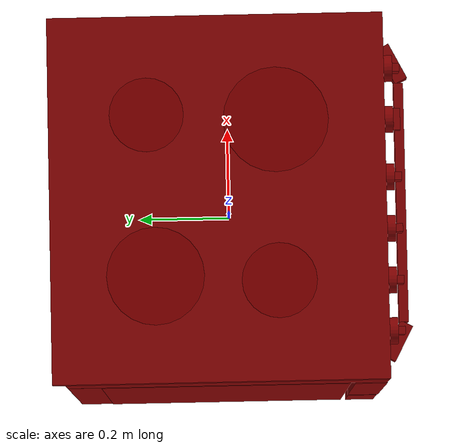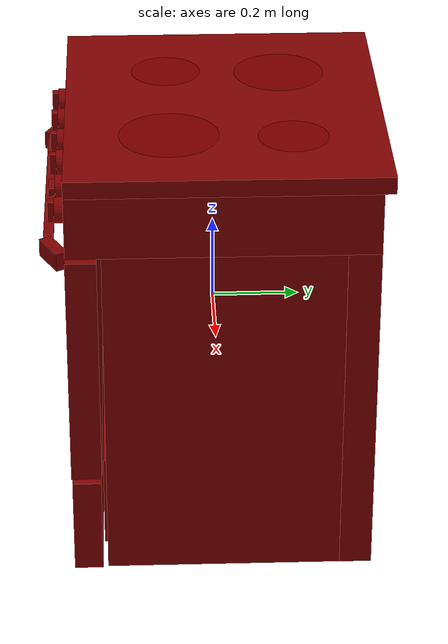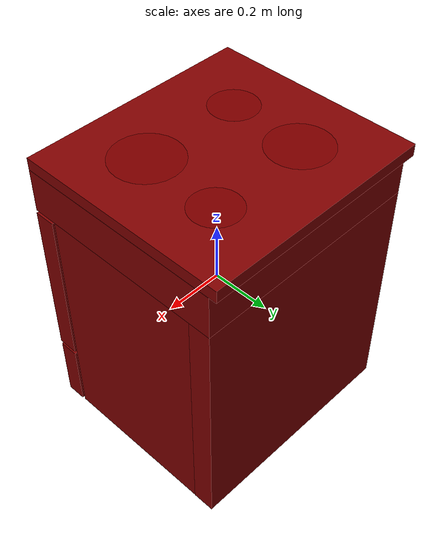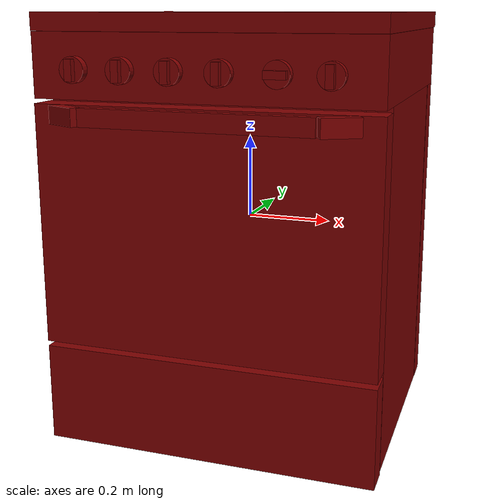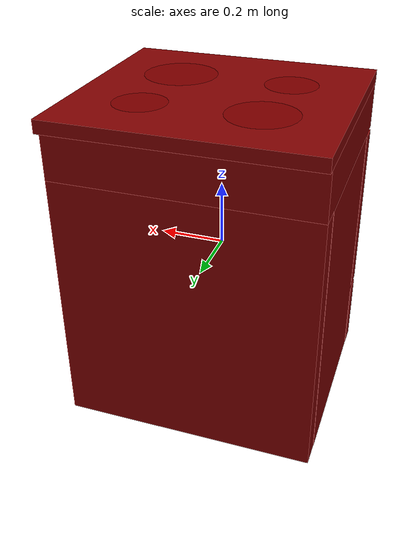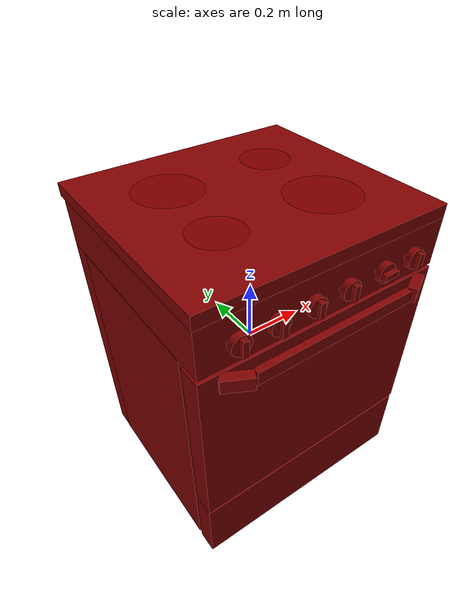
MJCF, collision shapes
<?xml version='1.0' encoding='UTF-8'?>
<mujoco model="model">
  <option timestep="0.002" gravity="0.0 0.0 -9.81"/>
  <compiler angle="radian"/>
  <asset>
    <mesh file="visuals/door.obj" name="door_vis"/>
    <mesh file="visuals/door_Clear.obj" name="door_Clear_vis"/>
    <mesh file="visuals/knob_front_left.obj" name="knob_front_left_vis"/>
    <mesh file="visuals/knob_front_right.obj" name="knob_front_right_vis"/>
    <mesh file="visuals/knob_rear_left.obj" name="knob_rear_left_vis"/>
    <mesh file="visuals/knob_rear_right.obj" name="knob_rear_right_vis"/>
    <mesh file="visuals/knob_temp.obj" name="knob_temp_vis"/>
    <mesh file="visuals/knob_time.obj" name="knob_time_vis"/>
    <mesh file="visuals/rack0.obj" name="rack0_vis"/>
    <mesh file="visuals/Body001.obj" name="Body001_vis"/>
    <mesh file="visuals/Door001.obj" name="Door001_vis"/>
    <mesh file="visuals/Door001_Clear.obj" name="Door001_Clear_vis"/>
    <mesh file="visuals/Knob001.obj" name="Knob001_vis"/>
    <mesh file="visuals/Knob002.obj" name="Knob002_vis"/>
    <mesh file="visuals/Shelf001.obj" name="Shelf001_vis"/>
    <texture file="visuals/T_BC001.png" name="Body001_material" type="2d"/>
    <material name="Body001_material" rgba="1 1 1 1.0" texture="Body001_material" shininess="0.44721364974975586" specular="1"/>
    <texture file="visuals/T_BC001.png" name="door_material" type="2d"/>
    <material name="door_material" rgba="1 1 1 1.0" texture="door_material" shininess="0.44721364974975586" specular="1"/>
    <material name="door_Clear_material" rgba="0.06827369332313538 0.06827369332313538 0.06827369332313538 0.5" shininess="0.44721364974975586" specular="0.3103448502657381"/>
    <texture file="visuals/T_BC001.png" name="knob_front_left_material" type="2d"/>
    <material name="knob_front_left_material" rgba="1 1 1 1.0" texture="knob_front_left_material" shininess="0.44721364974975586" specular="0.3103448502657381"/>
    <texture file="visuals/T_BC001.png" name="knob_front_right_material" type="2d"/>
    <material name="knob_front_right_material" rgba="1 1 1 1.0" texture="knob_front_right_material" shininess="0.44721364974975586" specular="0.3103448502657381"/>
    <texture file="visuals/T_BC001.png" name="knob_rear_left_material" type="2d"/>
    <material name="knob_rear_left_material" rgba="1 1 1 1.0" texture="knob_rear_left_material" shininess="0.44721364974975586" specular="0.3103448502657381"/>
    <texture file="visuals/T_BC001.png" name="knob_rear_right_material" type="2d"/>
    <material name="knob_rear_right_material" rgba="1 1 1 1.0" texture="knob_rear_right_material" shininess="0.44721364974975586" specular="0.3103448502657381"/>
    <texture file="visuals/T_BC001.png" name="knob_temp_material" type="2d"/>
    <material name="knob_temp_material" rgba="1 1 1 1.0" texture="knob_temp_material" shininess="0.44721364974975586" specular="0.3103448502657381"/>
    <texture file="visuals/T_BC001.png" name="knob_time_material" type="2d"/>
    <material name="knob_time_material" rgba="1 1 1 1.0" texture="knob_time_material" shininess="0.44721364974975586" specular="0.3103448502657381"/>
    <texture file="visuals/T_BC001.png" name="rack0_material" type="2d"/>
    <material name="rack0_material" rgba="1 1 1 1.0" texture="rack0_material" shininess="0.44721364974975586" specular="1"/>
  </asset>
  <default>
    <default class="visual">
      <geom conaffinity="0" contype="0" group="1" type="mesh"/>
    </default>
    <default class="collision">
      <geom group="0" rgba="0.5 0 0 0.5"/>
    </default>
    <default class="spawn">
      <geom group="0" rgba="1 1 1 0.5" contype="0" conaffinity="0"/>
      <site group="0" rgba="1 1 1 0.5"/>
    </default>
    <default class="region">
      <geom group="1" conaffinity="0" contype="0" rgba="0 1 0 0"/>
    </default>
  </default>
  <worldbody>
    <body>
      <body name="object">
        <geom mesh="Body001_vis" type="mesh" solimp="0.998 0.998 0.001" solref="0.001 1" friction="0.95 0.3 0.1" class="visual" material="Body001_material"/>
        <geom class="collision" type="box" pos="0.00021211360581219196 0.0105250533670187 0.38388288021087646" size="0.3899860382080078 0.3450489640235901 0.0726412832736969" quat="1.0 0.0 0.0 0.0"/>
        <geom class="collision" type="box" pos="-0.0003038622671738267 0.023220613598823547 0.4771888852119446" size="0.39050203561782837 0.35778361558914185 0.01996508799493313" quat="1.0 0.0 0.0 0.0"/>
        <geom class="collision" type="box" pos="0.00014780100900679827 0.3186796307563782 -0.09536382555961609" size="0.39005038142204285 0.03689435496926308 0.4065956175327301" quat="1.0 0.0 0.0 0.0"/>
        <geom class="collision" type="box" pos="-0.3634374737739563 0.01346171647310257 -0.09536382555961609" size="0.02749677188694477 0.26943087577819824 0.4065956175327301" quat="1.0 0.0 0.0 0.0"/>
        <geom class="collision" type="box" pos="0.36168187856674194 0.01346171647310257 -0.09536382555961609" size="0.027995208278298378 0.26943087577819824 0.4065956175327301" quat="1.0 0.0 0.0 0.0"/>
        <geom class="collision" type="box" pos="-0.0020940229296684265 0.00951321516185999 -0.36244410276412964" size="0.3304120600223541 0.2728126645088196 0.1128060519695282" quat="1.0 0.0 0.0 0.0"/>
        <geom class="collision" type="box" pos="-3.9022008422762156e-05 -0.30047327280044556 -0.38749605417251587" size="0.3912808299064636 0.03293570131063461 0.11657709628343582" quat="1.0 0.0 0.0 0.0"/>
        <geom class="collision" type="box" pos="0.3210519254207611 0.014561575837433338 -0.010562686249613762" size="0.013427120633423328 0.2681756615638733 0.004859191831201315" quat="1.0 0.0 0.0 0.0"/>
        <geom class="collision" type="box" pos="-0.3266502916812897 0.014561575837433338 -0.010562686249613762" size="0.01115818228572607 0.2681756615638733 0.004859191831201315" quat="1.0 0.0 0.0 0.0"/>
        <body name="door">
          <joint axis="1.0 0.0 0.0" pos="-6.720423698425293e-06 -0.3335697650909424 -0.25694581866264343" limited="true" name="door_joint" range="0.0 1.5707963267948966" type="hinge" damping="1" frictionloss="1" armature=".01" stiffness="0.05"/>
          <geom mesh="door_vis" type="mesh" solimp="0.998 0.998 0.001" solref="0.001 1" friction="0.95 0.3 0.1" class="visual" material="door_material"/>
          <geom class="collision" type="box" pos="0.00023107764718588442 -0.30071985721588135 0.021350156515836716" size="0.3912041187286377 0.034706976264715195 0.27912822365760803" quat="1.0 0.0 0.0 0.0" name="door_main"/>
          <geom class="collision" type="box" pos="-0.00013826345093548298 -0.30507922172546387 0.05400952324271202" size="0.25481748580932617 0.004614117555320263 0.15296544134616852" quat="1.0 0.0 0.0 0.0"/>
          <geom class="collision" type="box" pos="0.0006180386408232152 -0.3736084997653961 0.2795831859111786" size="0.2601465880870819 0.010277673602104187 0.020357374101877213" quat="1.0 0.0 0.0 0.0" name="door_handle_main"/>
          <geom class="collision" type="box" pos="-0.3004729747772217 -0.3603976368904114 0.2795831859111786" size="0.042267441749572754 0.014645480550825596 0.020357487723231316" quat="0.9714630246162415 0.0 -0.0 -0.23719099164009094"/>
          <geom class="collision" type="box" pos="0.303663432598114 -0.3603976368904114 0.2795831859111786" size="0.042267441749572754 0.014645480550825596 0.020357487723231316" quat="0.9714630246162415 0.0 0.0 0.23719105124473572"/>
          <body name="door_Clear">
            <geom mesh="door_Clear_vis" type="mesh" solimp="0.998 0.998 0.001" solref="0.001 1" friction="0.95 0.3 0.1" class="visual" material="door_Clear_material"/>
            <geom class="collision" type="box" pos="-0.00013826345093548298 -0.30507922172546387 0.05400952324271202" size="0.25481748580932617 0.004614117555320263 0.15296544134616852" quat="1.0 0.0 0.0 0.0"/>
          </body>
        </body>
        <body name="knob_front_left">
          <joint axis="0.0 -1.0 0.0" pos="-0.28353971242904663 -0.3532818555831909 0.37703847885131836" limited="true" name="knob_front_left_joint" range="0.0 3.141592653589793" type="hinge" damping="0.05" armature="1" frictionloss="0.75"/>
          <geom mesh="knob_front_left_vis" type="mesh" solimp="0.998 0.998 0.001" solref="0.001 1" friction="0.95 0.3 0.1" class="visual" material="knob_front_left_material"/>
          <geom class="collision" type="cylinder" pos="-0.28308528661727905 -0.3468807339668274 0.37694892287254333" size="0.028806501999497414 0.00980240385979414" quat="0.7071067094802856 0.7071068286895752 0.0 0.0" friction="100 0.5 0.01"/>
          <geom class="collision" type="box" pos="-0.2831331491470337 -0.36410999298095703 0.37677308917045593" size="0.008616102859377861 0.007660035043954849 0.023619240149855614" quat="1.0 0.0 0.0 0.0" name="knob_front_left_main" friction="100 0.5 0.01"/>
        </body>
        <body name="knob_front_right">
          <joint axis="0.0 -1.0 0.0" pos="0.04853237047791481 -0.35328108072280884 0.3770386576652527" limited="true" name="knob_front_right_joint" range="0.0 3.141592653589793" type="hinge" damping="0.05" armature="1" frictionloss="0.75"/>
          <geom mesh="knob_front_right_vis" type="mesh" solimp="0.998 0.998 0.001" solref="0.001 1" friction="0.95 0.3 0.1" class="visual" material="knob_front_right_material"/>
          <geom class="collision" type="box" pos="0.04846358671784401 -0.36410999298095703 0.37677308917045593" size="0.008616087026894093 0.007660027127712965 0.023619208484888077" quat="1.0 0.0 0.0 0.0" name="knob_front_right_main" friction="100 0.5 0.01"/>
          <geom class="collision" type="cylinder" pos="0.04851144924759865 -0.3468807339668274 0.37694892287254333" size="0.028806501999497414 0.00980240385979414" quat="0.7071067094802856 0.7071068286895752 0.0 0.0" friction="100 0.5 0.01"/>
        </body>
        <body name="knob_rear_left">
          <joint axis="0.0 -1.0 0.0" pos="-0.17376655340194702 -0.3532818555831909 0.37703847885131836" limited="true" name="knob_rear_left_joint" range="0.0 3.141592653589793" type="hinge" damping="0.05" armature="1" frictionloss="0.75"/>
          <geom mesh="knob_rear_left_vis" type="mesh" solimp="0.998 0.998 0.001" solref="0.001 1" friction="0.95 0.3 0.1" class="visual" material="knob_rear_left_material"/>
          <geom class="collision" type="box" pos="-0.1738709956407547 -0.36410999298095703 0.37677308917045593" size="0.00861609447747469 0.0076600308530032635 0.02361922524869442" quat="1.0 0.0 0.0 0.0" name="knob_rear_left_main" friction="100 0.5 0.01"/>
          <geom class="collision" type="cylinder" pos="-0.17382313311100006 -0.3468807339668274 0.37694892287254333" size="0.028806501999497414 0.00980240385979414" quat="0.7071067094802856 0.7071068286895752 0.0 0.0" friction="100 0.5 0.01"/>
        </body>
        <body name="knob_rear_right">
          <joint axis="0.0 -1.0 0.0" pos="-0.06261017918586731 -0.35328108072280884 0.37703877687454224" limited="true" name="knob_rear_right_joint" range="0.0 3.141592653589793" type="hinge" damping="0.05" armature="1" frictionloss="0.75"/>
          <geom mesh="knob_rear_right_vis" type="mesh" solimp="0.998 0.998 0.001" solref="0.001 1" friction="0.95 0.3 0.1" class="visual" material="knob_rear_right_material"/>
          <geom class="collision" type="box" pos="-0.06289315223693848 -0.36410999298095703 0.37677308917045593" size="0.008616078644990921 0.007660022936761379 0.023619191721081734" quat="1.0 0.0 0.0 0.0" name="knob_rear_right_main" friction="100 0.5 0.01"/>
          <geom class="collision" type="cylinder" pos="-0.06284528970718384 -0.3468807339668274 0.37694892287254333" size="0.028806501999497414 0.00980240385979414" quat="0.7071067094802856 0.7071068286895752 0.0 0.0" friction="100 0.5 0.01"/>
        </body>
        <body name="knob_temp">
          <joint axis="0.0 1.0 0.0" pos="0.2836037874221802 -0.35328182578086853 0.3770373463630676" limited="true" name="knob_temp_joint" range="0.0 5.585053606381854" type="hinge" damping="0.05" armature="1" frictionloss="0.75"/>
          <geom mesh="knob_temp_vis" type="mesh" solimp="0.998 0.998 0.001" solref="0.001 1" friction="0.95 0.3 0.1" class="visual" material="knob_temp_material"/>
          <geom class="collision" type="box" pos="0.28339800238609314 -0.36410999298095703 0.37677308917045593" size="0.008616062812507153 0.007660015020519495 0.023619160056114197" quat="1.0 0.0 0.0 0.0" name="knob_temp_main" friction="100 0.5 0.01"/>
          <geom class="collision" type="cylinder" pos="0.2834458649158478 -0.3468807339668274 0.37694892287254333" size="0.028806501999497414 0.00980240385979414" quat="0.7071067094802856 0.7071068286895752 0.0 0.0" friction="100 0.5 0.01"/>
        </body>
        <body name="knob_time">
          <joint axis="0.0 1.0 0.0" pos="0.17300677299499512 -0.3532818555831909 0.37680143117904663" limited="true" name="knob_time_joint" range="0.0 5.235987755982989" type="hinge" damping="0.05" armature="1" frictionloss="0.75"/>
          <geom mesh="knob_time_vis" type="mesh" solimp="0.998 0.998 0.001" solref="0.001 1" friction="0.95 0.3 0.1" class="visual" material="knob_time_material"/>
          <geom class="collision" type="box" pos="0.172739177942276 -0.36410999298095703 0.37729883193969727" size="0.02361917681992054 0.007660019211471081 0.008616073057055473" quat="1.0 0.0 0.0 0.0" name="knob_time_main" friction="100 0.5 0.01"/>
          <geom class="collision" type="cylinder" pos="0.1729150116443634 -0.3468807339668274 0.3772509694099426" size="0.028806501999497414 0.00980240385979414" quat="0.5 0.5 0.4999999701976776 -0.5" friction="100 0.5 0.01"/>
        </body>
        <body name="rack0">
          <geom class="region" name="reg_rack0" type="box" pos="-0.0011288970708847046 0.02639751136302948 0.1583871627226472" size="0.3120198527574539 0.21943136847019196 0.15102079959958792"/>
          <joint axis="0.0 -1.0 0.0" pos="-0.003067418932914734 0.026343002915382385 0.00014370528515428305" limited="true" name="rack0_joint" range="0.0 0.4" type="slide" damping="1" frictionloss="1" armature=".01" stiffness="0.05"/>
          <geom mesh="rack0_vis" type="mesh" solimp="0.998 0.998 0.001" solref="0.001 1" friction="0.95 0.3 0.1" class="visual" material="rack0_material"/>
          <geom class="collision" type="box" pos="-0.002433313289657235 0.02685539983212948 0.0008269825484603643" size="0.3329894244670868 0.22152142226696014 0.004735201597213745" quat="1.0 0.0 0.0 0.0"/>
        </body>
        <site type="cylinder" rgba="0.5 0 0 0.5" size="0.1040283590555191 0.0001" pos="-0.16395854949951172 0.15863148868083954 0.4971579611301422" name="burner_on_rear_left"/>
        <site type="cylinder" rgba="0.5 0 0 0.5" size="0.11218677461147308 0.0001" pos="0.16465678811073303 -0.10272422432899475 0.4971398711204529" name="burner_on_front_right"/>
        <site type="cylinder" rgba="0.5 0 0 0.5" size="0.0791696161031723 0.0001" pos="0.1795073002576828 0.17216303944587708 0.4971426725387573" name="burner_on_rear_right"/>
        <site type="cylinder" rgba="0.5 0 0 0.5" size="0.07994472980499268 0.0001" pos="-0.17773374915122986 -0.10398853570222855 0.49714136123657227" name="burner_on_front_left"/>
        <geom class="region" name="reg_int" type="box" pos="-0.0031290054321289062 0.012744516134262085 0.04865073412656784" size="0.30787811970710754 0.2702370116710663 0.29916610366106033"/>
        <site name="burner_rear_left_place_site" type="cylinder" rgba="0.5 0 0 0" size="0.1040283590555191 4.999999509891495e-05" pos="-0.16395854949951172 0.15863148868083954 0.4971579611301422"/>
        <site name="burner_front_right_place_site" type="cylinder" rgba="0.5 0 0 0" size="0.11218677461147308 4.999999873689376e-05" pos="0.16465678811073303 -0.10272422432899475 0.4971398711204529"/>
        <site name="burner_rear_right_place_site" type="cylinder" rgba="0.5 0 0 0" size="0.0791696161031723 4.999999509891495e-05" pos="0.1795073002576828 0.17216303944587708 0.4971426725387573"/>
        <site name="burner_front_left_place_site" type="cylinder" rgba="0.5 0 0 0" size="0.07994472980499268 4.999999509891495e-05" pos="-0.17773374915122986 -0.10398853570222855 0.49714136123657227"/>
        <geom class="region" name="reg_main" type="box" pos="7.450580596923828e-09 0.02298000454902649 0.0" size="0.39261917567253113 0.35976861214637756 0.5032007822990417"/>
      </body>
    </body>
  </worldbody>
  <actuator>
    <motor name="door_joint_actuator" joint="door_joint" gear="50"/>
    <motor name="knob_front_left_joint_actuator" joint="knob_front_left_joint" gear="50"/>
    <motor name="knob_front_right_joint_actuator" joint="knob_front_right_joint" gear="50"/>
    <motor name="knob_rear_left_joint_actuator" joint="knob_rear_left_joint" gear="50"/>
    <motor name="knob_rear_right_joint_actuator" joint="knob_rear_right_joint" gear="50"/>
    <motor name="knob_temp_joint_actuator" joint="knob_temp_joint" gear="50"/>
    <motor name="knob_time_joint_actuator" joint="knob_time_joint" gear="50"/>
    <motor name="rack0_joint_actuator" joint="rack0_joint" gear="50"/>
  </actuator>
</mujoco>
